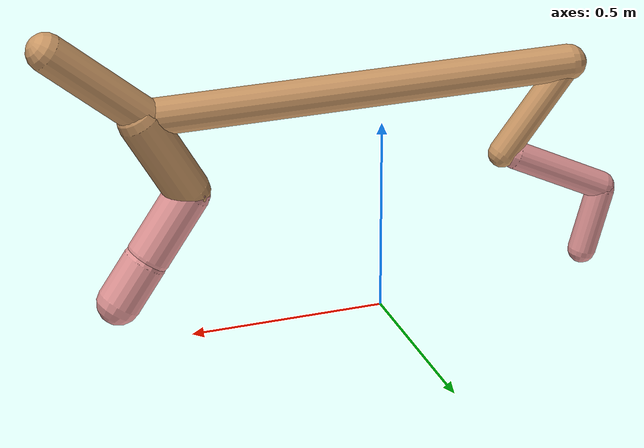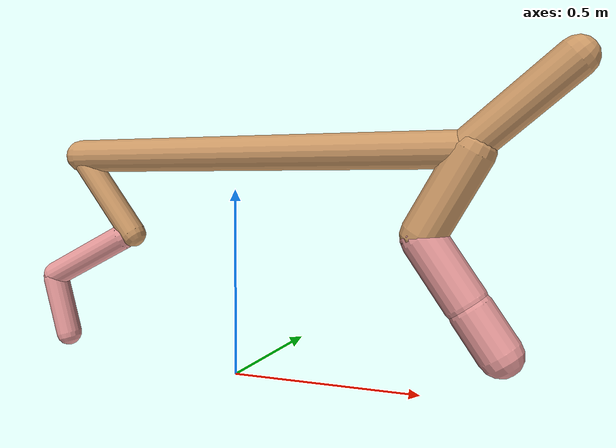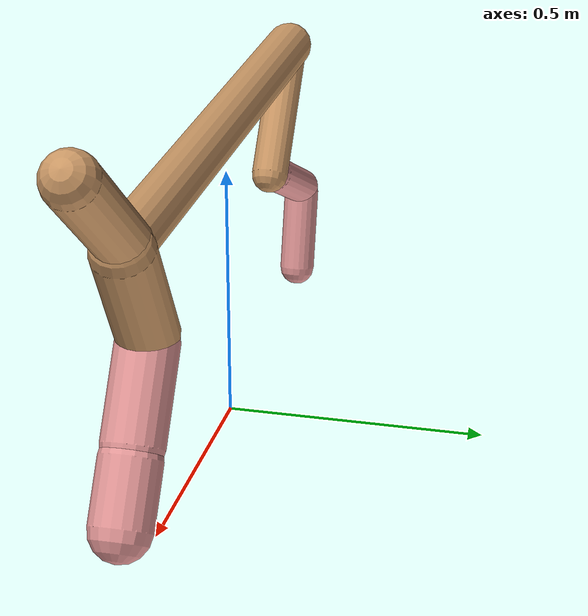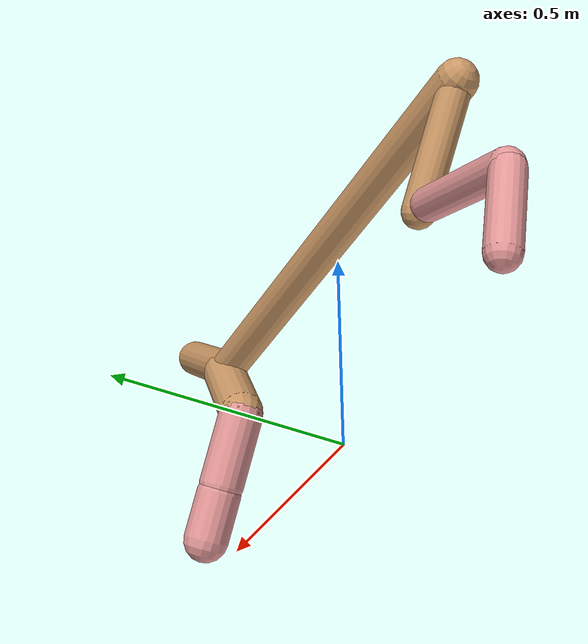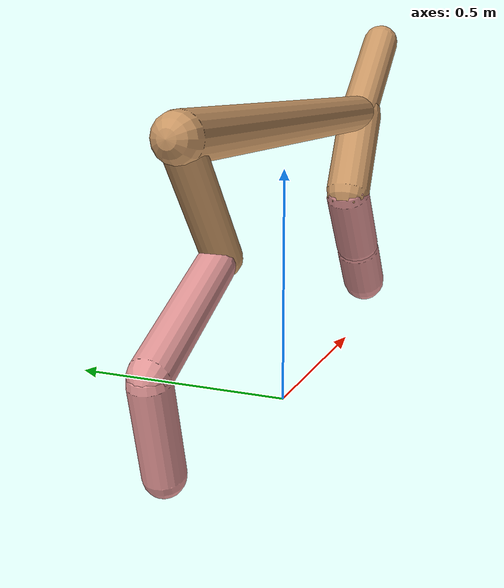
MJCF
<mujoco model="cheetah">
  <compiler angle="radian" coordinate="local" inertiafromgeom="true" settotalmass="14" />
  <default>
    <joint armature=".1" damping=".01" limited="true" solimplimit="0 .8 .03" solreflimit=".02 1" stiffness="8" />
    <geom conaffinity="0" condim="3" contype="1" friction="0.8 .1 .1" rgba="0.8 0.6 .4 1" solimp="0.0 0.8 0.01" solref="0.02 1" />
    <motor ctrllimited="true" ctrlrange="-1 1" />
  </default>
  <size nstack="300000" nuser_geom="1" />
  <option gravity="0 0 -9.81" timestep="0.01" />
  <worldbody>
    <body name="torso" pos="0.0 0.0 0.5967142965935">
      <joint armature="0" axis="1 0 0" damping="0" limited="false" name="ignorex" pos="0 0 0" stiffness="0" type="slide" />
      <joint armature="0" axis="0 0 1" damping="0" limited="false" name="ignorez" pos="0 0 0" stiffness="0" type="slide" />
      <joint armature="0" axis="0 1 0" damping="0" limited="false" name="ignorey" pos="0 0 0" stiffness="0" type="hinge" />
      <geom fromto="-0.5 0.0 0.0 0.6192906958981139 0.0 0.0" name="torso" size="0.04617950409697463" type="capsule" />
      <geom axisangle="0 1 0 .87" name="head" pos="0.7192906958981139 0.0 0.1" size="0.048377188577792544 0.15" type="capsule" />

      <body name="bthigh" pos="-.5 0 0">
        <joint axis="0 1 0" damping="6" name="bthigh" pos="0 0 0" range="-.52 1.05" stiffness="240" type="hinge" />
        <geom axisangle="0 1 0 -3.8" name="bthigh" pos="0.09226161974806224 0.0 -0.11994010567248092" size="0.03655814984951655 0.13230811271699786" type="capsule" />
        <body name="bshin" pos="0.14452323949612447 0.0 -0.22988021134496184">
          <joint axis="0 1 0" damping="4.5" name="bshin" pos="0 0 0" range="-.785 .785" stiffness="180" type="hinge" />
          <geom axisangle="0 1 0 -2.03" name="bshin" pos="-0.12825658369894158 0.0 -0.06412829184947079" rgba="0.9 0.6 0.6 1" size="0.03655814984951655 0.1368704614313771" type="capsule" />
          <body name="bfoot" pos="-0.25651316739788316 0.0 -0.12825658369894158">
            <joint axis="0 1 0" damping="3" name="bfoot" pos="0 0 0" range="-.4 .785" stiffness="120" type="hinge" />
            <geom axisangle="0 1 0 -.27" name="bfoot" pos="0.027568921162941552 0.0 -0.08913951176017769" rgba="0.9 0.6 0.6 1" size="0.03655814984951655 0.08577215583032965" type="capsule" />
            <inertial mass="10" />
          </body>
        </body>
      </body>
      <body name="fthigh" pos="0.6192906958981139 0.0 0.0">
        <joint axis="0 1 0" damping="4.5" name="fthigh" pos="0 0 0" range="-1.5 0.8" stiffness="180" type="hinge" />
        <geom axisangle="0 1 0 .52" name="fthigh" pos="-0.060832924800396475 0.0 -0.1042850139435368" size="0.05624111398231409 0.11480670303463338" type="capsule" />
        <body name="fshin" pos="-0.12166584960079295 0.0 -0.2085700278870736">
          <joint axis="0 1 0" damping="3" name="fshin" pos="0 0 0" range="-1.2 1.1" stiffness="120" type="hinge" />
          <geom axisangle="0 1 0 -.6" name="fshin" pos="0.05651043328759561 0.0 -0.07824521532128623" rgba="0.9 0.6 0.6 1" size="0.05624111398231409 0.0915000791103093" type="capsule" />
          <body name="ffoot" pos="0.11302086657519123 0.0 -0.15649043064257245">
            <joint axis="0 1 0" damping="1.5" name="ffoot" pos="0 0 0" range="-3.1 -0.3" stiffness="60" type="hinge" />
            <geom axisangle="0 1 0 -.6" name="ffoot" pos="0.03982201923945113 0.0 -0.06194536326136844" rgba="0.9 0.6 0.6 1" size="0.05624111398231409 0.06042458054454388" type="capsule" />
            <inertial mass="10" />
          </body>
        </body>
      </body>
    </body>
  </worldbody>
  <actuator>
    <motor gear="120" joint="bthigh" name="bthigh" />
    <motor gear="90" joint="bshin" name="bshin" />
    <motor gear="60" joint="bfoot" name="bfoot" />
    <motor gear="120" joint="fthigh" name="fthigh" />
    <motor gear="60" joint="fshin" name="fshin" />
    <motor gear="30" joint="ffoot" name="ffoot" />
  </actuator>
</mujoco>
